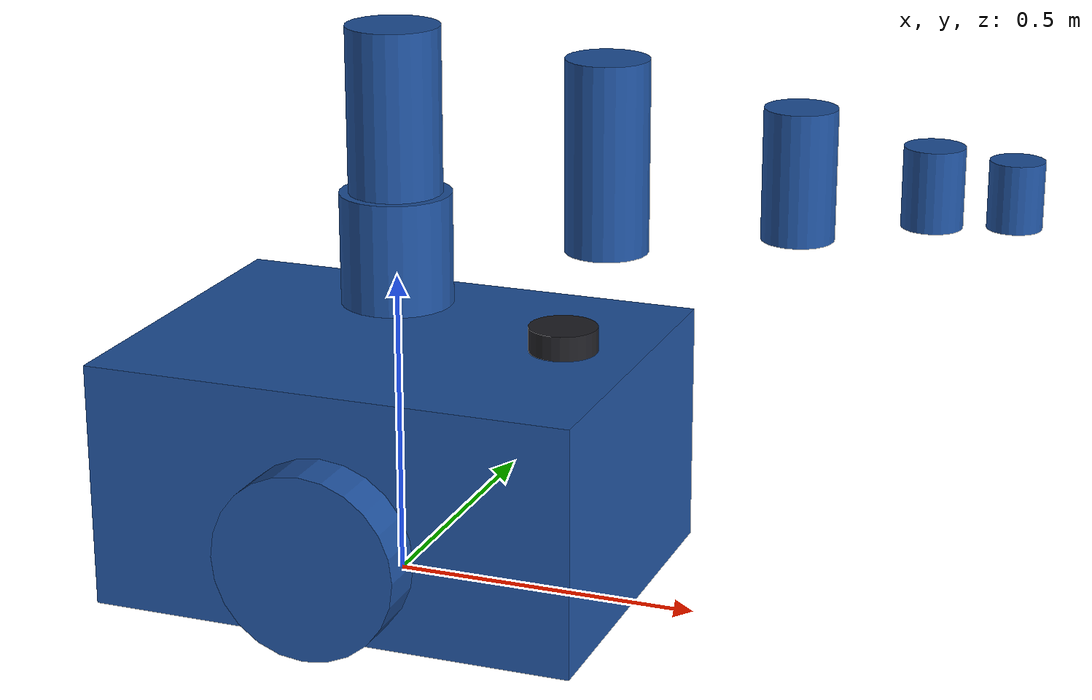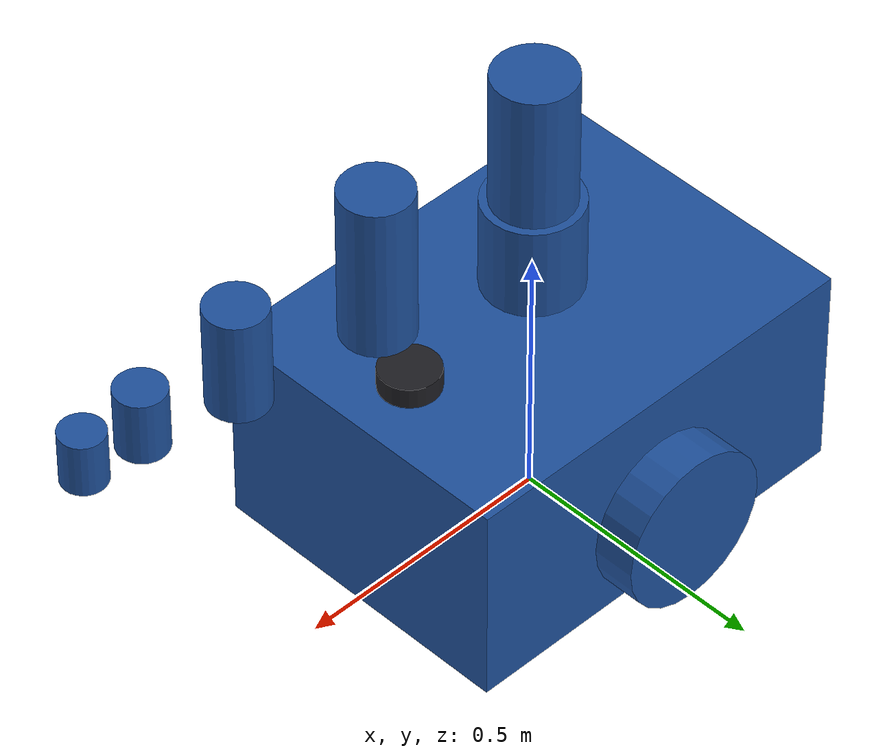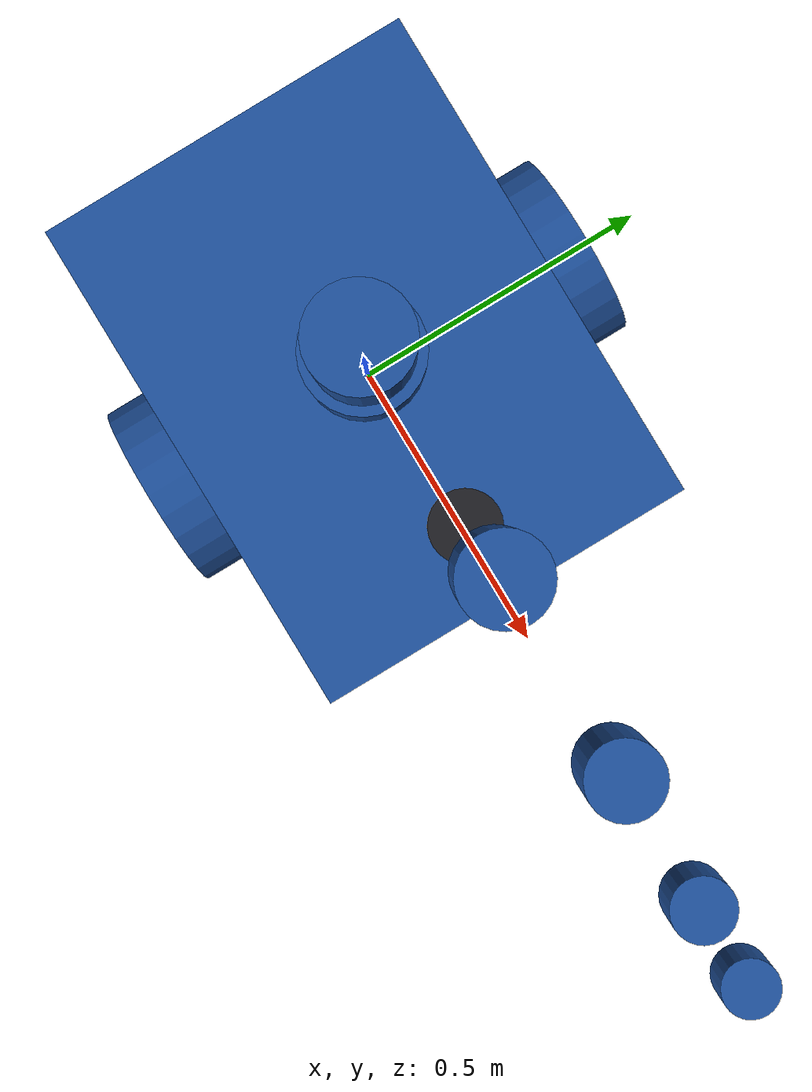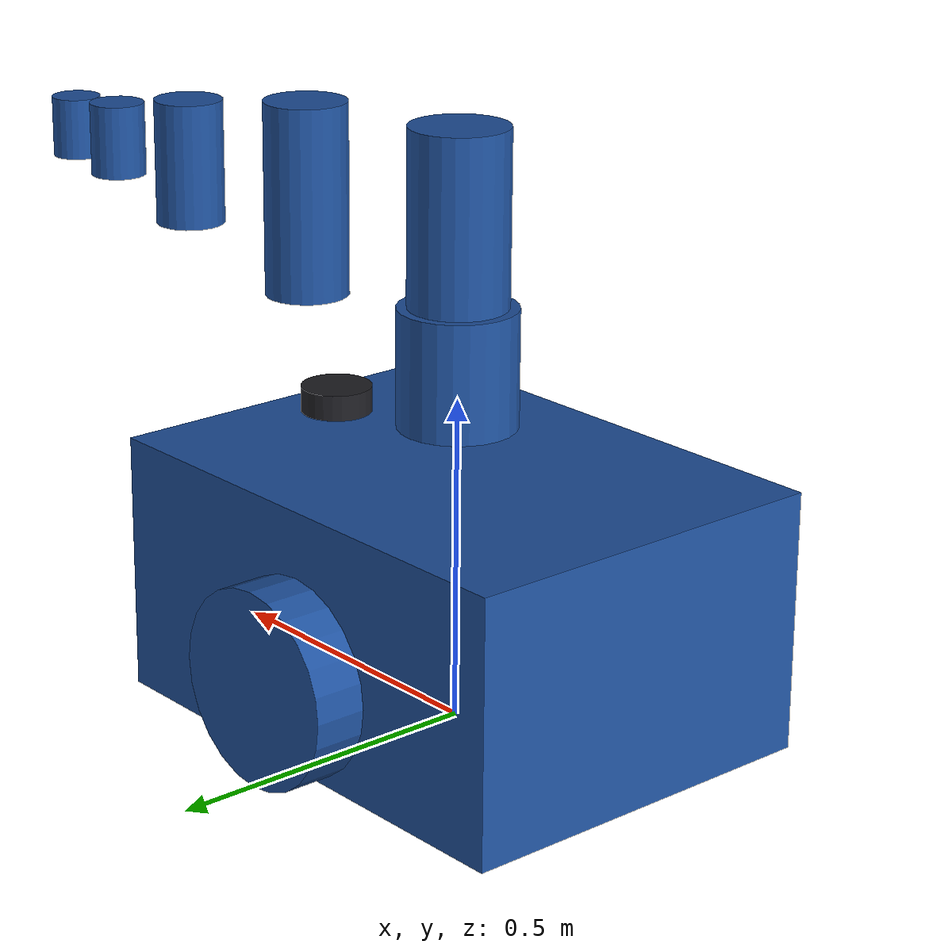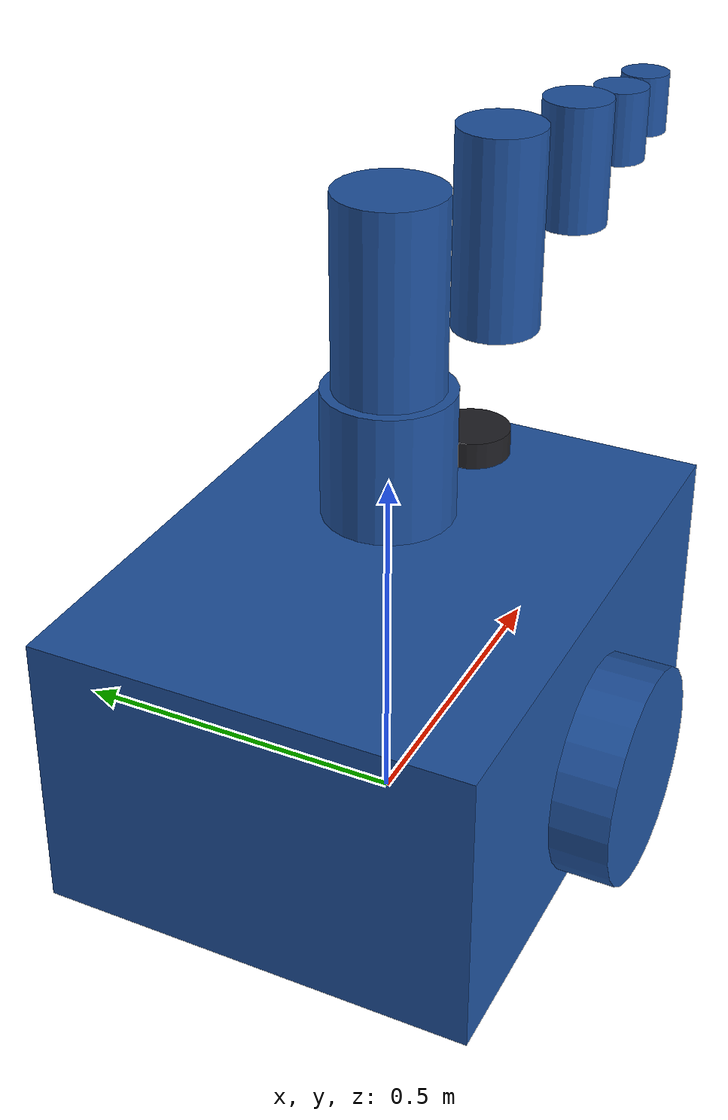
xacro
<?xml version="1.0"?>
<robot xmlns:xacro="http://www.ros.org/wiki/xacro" name="reference_mobile_manipulator">
  <material name="jx_blue"><color rgba="0.12 0.32 0.62 1"/></material>
  <material name="jx_dark"><color rgba="0.12 0.12 0.14 1"/></material>
  <xacro:macro name="inertial" params="mass ixx iyy izz">
    <inertial><mass value="${mass}"/><inertia ixx="${ixx}" ixy="0" ixz="0" iyy="${iyy}" iyz="0" izz="${izz}"/></inertial>
  </xacro:macro>
  <xacro:macro name="cylinder_link" params="name radius length mass ixx iyy izz">
    <link name="${name}">
      <xacro:inertial mass="${mass}" ixx="${ixx}" iyy="${iyy}" izz="${izz}"/>
      <visual><geometry><cylinder radius="${radius}" length="${length}"/></geometry><material name="jx_blue"/></visual>
      <collision><geometry><cylinder radius="${radius}" length="${length}"/></geometry></collision>
    </link>
  </xacro:macro>
  <link name="base_link">
    <xacro:inertial mass="100" ixx="8" iyy="10" izz="12"/>
    <visual><origin xyz="0 0 0.2"/><geometry><box size="0.8 0.6 0.4"/></geometry><material name="jx_blue"/></visual>
    <collision><origin xyz="0 0 0.2"/><geometry><box size="0.8 0.6 0.4"/></geometry></collision>
  </link>
  <xacro:cylinder_link name="left_wheel_link" radius="0.15" length="0.08" mass="5" ixx="0.03" iyy="0.06" izz="0.03"/>
  <xacro:cylinder_link name="right_wheel_link" radius="0.15" length="0.08" mass="5" ixx="0.03" iyy="0.06" izz="0.03"/>
  <joint name="left_wheel_joint" type="continuous"><parent link="base_link"/><child link="left_wheel_link"/><origin xyz="0 0.34 0.15" rpy="1.57079632679 0 0"/><axis xyz="0 1 0"/></joint>
  <joint name="right_wheel_joint" type="continuous"><parent link="base_link"/><child link="right_wheel_link"/><origin xyz="0 -0.34 0.15" rpy="1.57079632679 0 0"/><axis xyz="0 1 0"/></joint>
  <link name="front_caster_link"><visual><geometry><sphere radius="0.04"/></geometry></visual><collision><geometry><sphere radius="0.04"/></geometry></collision><xacro:inertial mass="0.5" ixx="0.001" iyy="0.001" izz="0.001"/></link>
  <joint name="front_caster_joint" type="fixed"><parent link="base_link"/><child link="front_caster_link"/><origin xyz="0.3 0 0.04"/></joint>
  <link name="rear_caster_link"><visual><geometry><sphere radius="0.04"/></geometry></visual><collision><geometry><sphere radius="0.04"/></geometry></collision><xacro:inertial mass="0.5" ixx="0.001" iyy="0.001" izz="0.001"/></link>
  <joint name="rear_caster_joint" type="fixed"><parent link="base_link"/><child link="rear_caster_link"/><origin xyz="-0.3 0 0.04"/></joint>
  <xacro:cylinder_link name="arm_link_1" radius="0.09" length="0.18" mass="8" ixx="0.12" iyy="0.12" izz="0.08"/>
  <xacro:cylinder_link name="arm_link_2" radius="0.075" length="0.35" mass="7" ixx="0.10" iyy="0.10" izz="0.06"/>
  <xacro:cylinder_link name="arm_link_3" radius="0.065" length="0.30" mass="5" ixx="0.07" iyy="0.07" izz="0.04"/>
  <xacro:cylinder_link name="arm_link_4" radius="0.055" length="0.20" mass="4" ixx="0.05" iyy="0.05" izz="0.03"/>
  <xacro:cylinder_link name="arm_link_5" radius="0.045" length="0.12" mass="3" ixx="0.03" iyy="0.03" izz="0.02"/>
  <xacro:cylinder_link name="arm_link_6" radius="0.04" length="0.10" mass="2" ixx="0.02" iyy="0.02" izz="0.01"/>
  <joint name="joint_1" type="revolute"><parent link="base_link"/><child link="arm_link_1"/><origin xyz="0 0 0.55"/><axis xyz="0 0 1"/><limit lower="-3.14" upper="3.14" effort="120" velocity="1.5"/></joint>
  <joint name="joint_2" type="revolute"><parent link="arm_link_1"/><child link="arm_link_2"/><origin xyz="0 0 0.18"/><axis xyz="0 1 0"/><limit lower="-1.5" upper="1.5" effort="120" velocity="1.2"/></joint>
  <joint name="joint_3" type="revolute"><parent link="arm_link_2"/><child link="arm_link_3"/><origin xyz="0.35 0 0"/><axis xyz="0 1 0"/><limit lower="-2.2" upper="2.2" effort="100" velocity="1.5"/></joint>
  <joint name="joint_4" type="revolute"><parent link="arm_link_3"/><child link="arm_link_4"/><origin xyz="0.30 0 0"/><axis xyz="1 0 0"/><limit lower="-3.14" upper="3.14" effort="60" velocity="2"/></joint>
  <joint name="joint_5" type="revolute"><parent link="arm_link_4"/><child link="arm_link_5"/><origin xyz="0.20 0 0"/><axis xyz="0 1 0"/><limit lower="-2" upper="2" effort="40" velocity="2"/></joint>
  <joint name="joint_6" type="revolute"><parent link="arm_link_5"/><child link="arm_link_6"/><origin xyz="0.12 0 0"/><axis xyz="1 0 0"/><limit lower="-3.14" upper="3.14" effort="25" velocity="2.5"/></joint>
  <link name="tool0"/><joint name="tool0_fixed" type="fixed"><parent link="arm_link_6"/><child link="tool0"/><origin xyz="0.10 0 0"/></joint>
  <link name="imu_link"/><joint name="imu_fixed" type="fixed"><parent link="base_link"/><child link="imu_link"/><origin xyz="0 0 0.35"/></joint>
  <link name="lidar_link">
    <visual><geometry><cylinder radius="0.055" length="0.04"/></geometry><material name="jx_dark"/></visual>
    <collision><geometry><cylinder radius="0.055" length="0.04"/></geometry></collision>
    <xacro:inertial mass="0.2" ixx="0.0001" iyy="0.0001" izz="0.0002"/>
  </link>
  <joint name="lidar_fixed" type="fixed"><parent link="base_link"/><child link="lidar_link"/><origin xyz="0.28 0 0.43"/></joint>
  <ros2_control name="reference_sim_system" type="system">
    <hardware><plugin>gz_ros2_control/GazeboSimSystem</plugin></hardware>
    <joint name="joint_1"><command_interface name="position"/><state_interface name="position"/><state_interface name="velocity"/></joint>
    <joint name="joint_2"><command_interface name="position"/><state_interface name="position"/><state_interface name="velocity"/></joint>
    <joint name="joint_3"><command_interface name="position"/><state_interface name="position"/><state_interface name="velocity"/></joint>
    <joint name="joint_4"><command_interface name="position"/><state_interface name="position"/><state_interface name="velocity"/></joint>
    <joint name="joint_5"><command_interface name="position"/><state_interface name="position"/><state_interface name="velocity"/></joint>
    <joint name="joint_6"><command_interface name="position"/><state_interface name="position"/><state_interface name="velocity"/></joint>
    <joint name="left_wheel_joint"><command_interface name="velocity"/><state_interface name="position"/><state_interface name="velocity"/></joint>
    <joint name="right_wheel_joint"><command_interface name="velocity"/><state_interface name="position"/><state_interface name="velocity"/></joint>
  </ros2_control>
  <gazebo><plugin filename="libgz_ros2_control-system.so" name="gz_ros2_control::GazeboSimROS2ControlPlugin"><parameters>$(find jx_mobile_manipulator_sim)/config/controllers.yaml</parameters></plugin></gazebo>
  <gazebo reference="imu_link"><sensor name="base_imu" type="imu"><always_on>true</always_on><update_rate>100</update_rate><topic>/imu/data</topic></sensor></gazebo>
  <gazebo reference="lidar_link"><sensor name="navigation_lidar" type="gpu_lidar"><always_on>true</always_on><update_rate>20</update_rate><topic>/scan</topic><lidar><scan><horizontal><samples>720</samples><resolution>1</resolution><min_angle>-3.14159265359</min_angle><max_angle>3.14159265359</max_angle></horizontal></scan><range><min>0.08</min><max>20</max><resolution>0.01</resolution></range></lidar></sensor></gazebo>
</robot>
